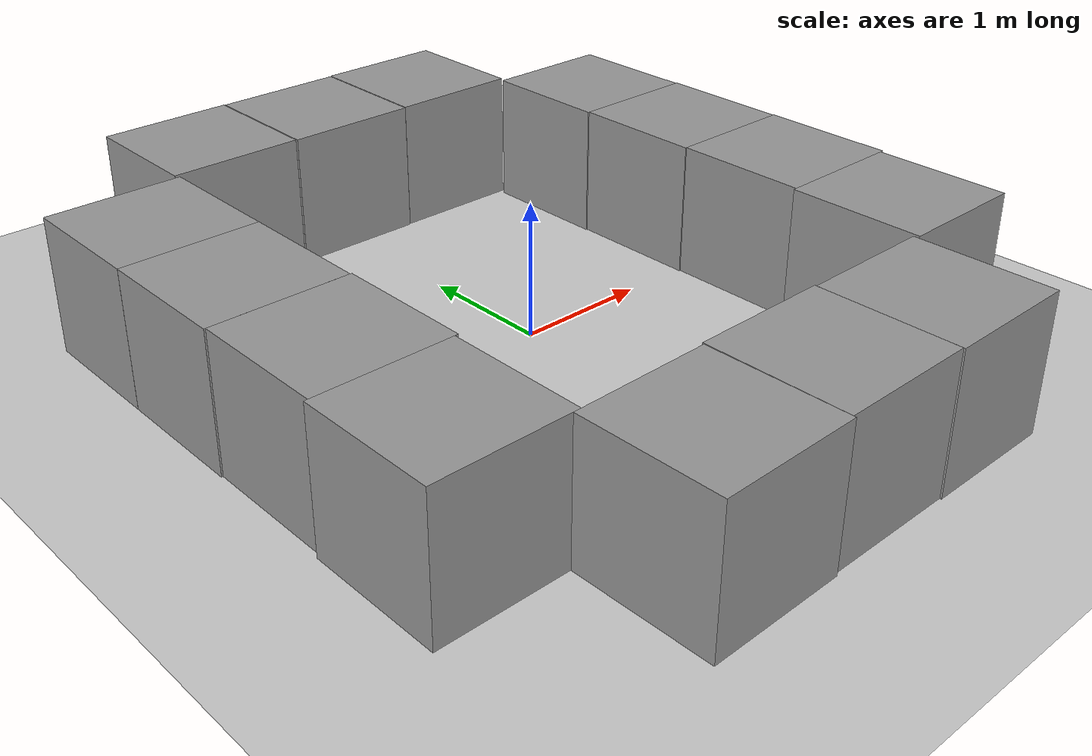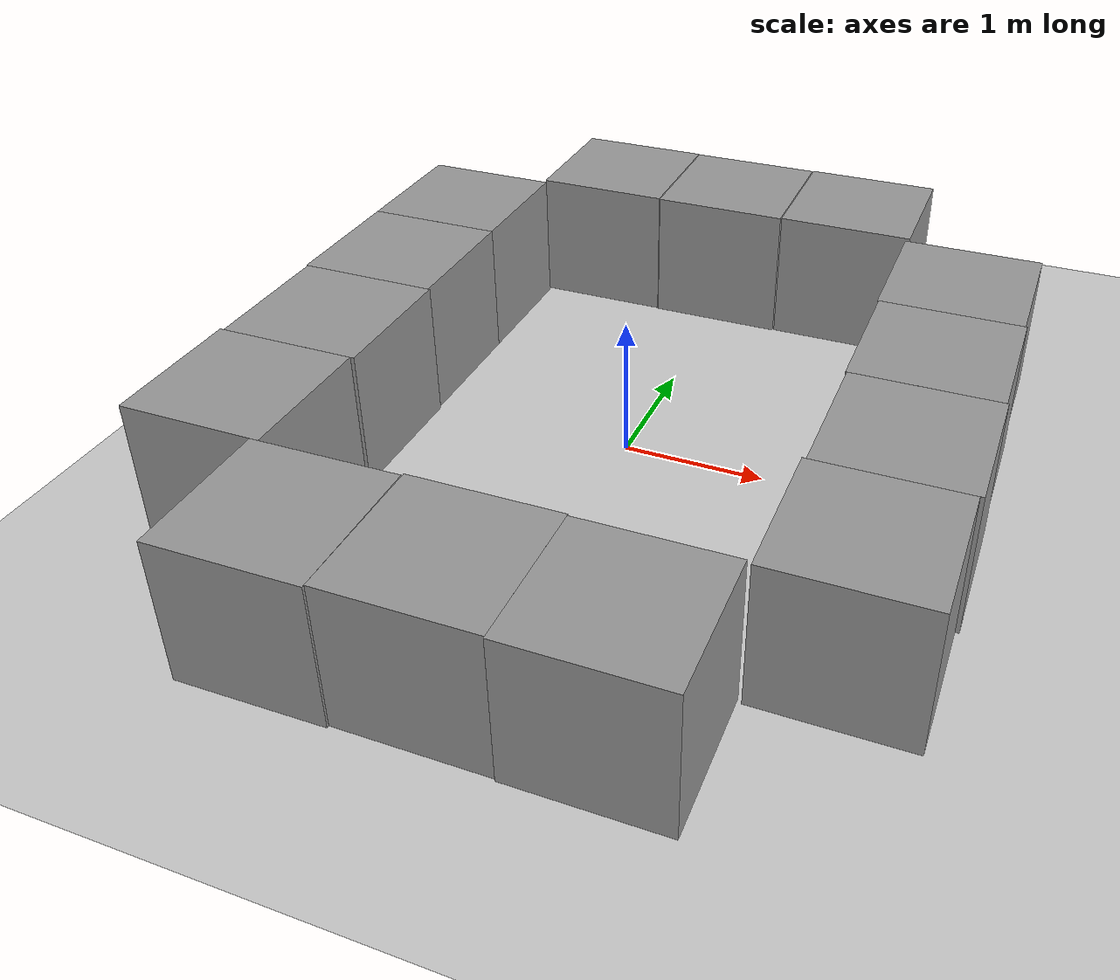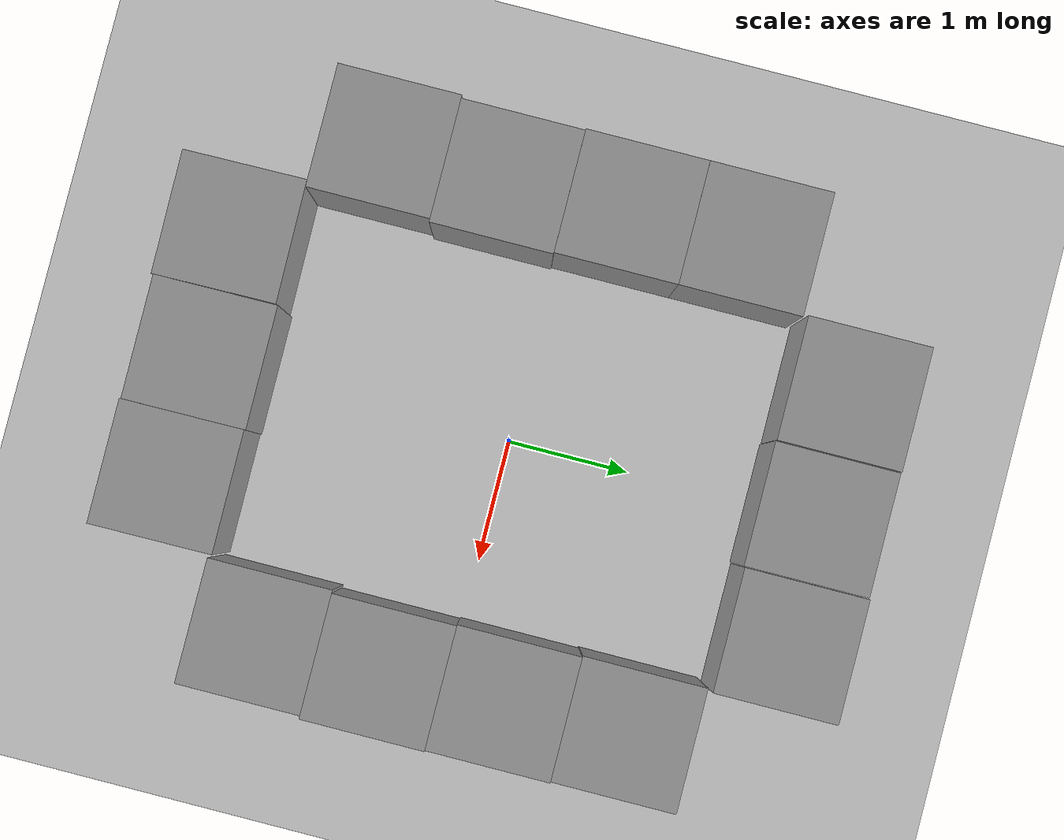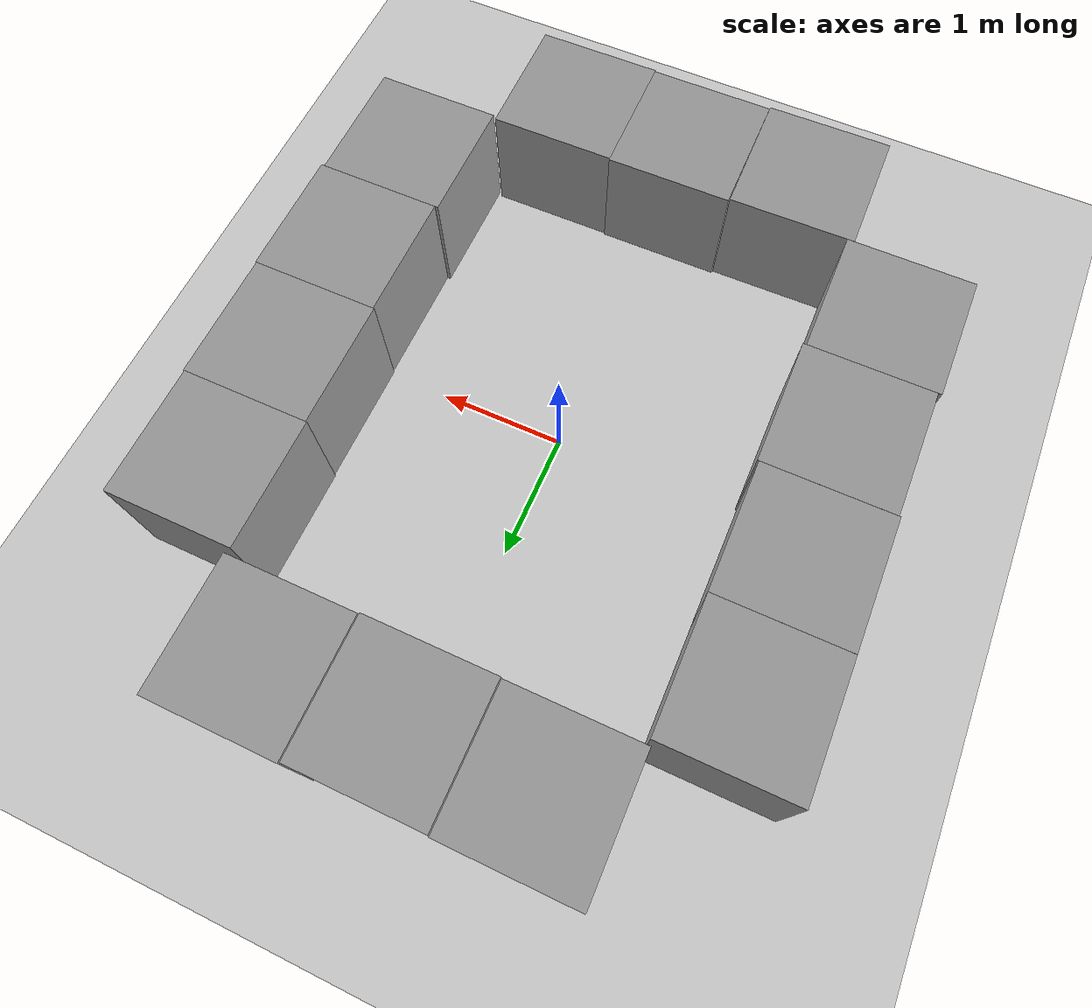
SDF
<sdf version="1.7">
 <world name="default">
  <light name="sun" type="directional">
   <pose>0 0 10 0 -0 0</pose>
   <diffuse>0.8 0.8 0.8 1</diffuse>
   <specular>0.2 0.2 0.2 1</specular>
   <attenuation>
    <range>1000</range>
    <constant>0.9</constant>
    <linear>0.01</linear>
    <quadratic>0.001</quadratic>
   </attenuation>
   <direction>-0.5 0.1 -0.9</direction>
   <spot><inner_angle>0</inner_angle><outer_angle>0</outer_angle><falloff>0</falloff></spot>
  </light>
  <model name="ground_plane">
   <static>1</static>
   <link name="link">
    <collision name="collision">
     <geometry><plane><normal>0 0 1</normal><size>100 100</size></plane></geometry>
     <surface>
      <contact><collide_bitmask>65535</collide_bitmask></contact>
      <friction><ode><mu>100</mu><mu2>50</mu2></ode></friction>
     </surface>
    </collision>
    <visual name="visual">
     <cast_shadows>0</cast_shadows>
     <geometry><plane><normal>0 0 1</normal><size>100 100</size></plane></geometry>
     <material>
      <script><uri>file://media/materials/scripts/gazebo.material</uri><name>Gazebo/Grey</name></script>
     </material>
    </visual>
   </link>
  </model>
  <physics type="ode">
   <real_time_update_rate>1000</real_time_update_rate>
   <max_step_size>0.001</max_step_size>
   <real_time_factor>1</real_time_factor>
   <ode>
    <solver>
     <type>quick</type>
     <iters>150</iters>
     <precon_iters>0</precon_iters>
     <sor>1.4</sor>
     <use_dynamic_moi_rescaling>1</use_dynamic_moi_rescaling>
    </solver>
    <constraints>
     <cfm>1e-05</cfm>
     <erp>0.2</erp>
     <contact_max_correcting_vel>2000</contact_max_correcting_vel>
     <contact_surface_layer>0.01</contact_surface_layer>
    </constraints>
   </ode>
  </physics>
  <scene><ambient>0.4 0.4 0.4 1</ambient><background>0.7 0.7 0.7 1</background><shadows>1</shadows></scene>
  <gravity>0 0 -9.8</gravity>
  <magnetic_field>6e-06 2.3e-05 -4.2e-05</magnetic_field>
  <atmosphere type="adiabatic"/>
  <spherical_coordinates>
   <surface_model>EARTH_WGS84</surface_model>
   <latitude_deg>0</latitude_deg>
   <longitude_deg>0</longitude_deg>
   <elevation>0</elevation>
   <heading_deg>0</heading_deg>
  </spherical_coordinates>
  <model name="unit_box">
   <pose>0.001662 2.50363 0.5 0 -0 0</pose>
   <link name="link">
    <inertial>
     <mass>1</mass>
     <inertia>
      <ixx>0.166667</ixx>
      <ixy>0</ixy>
      <ixz>0</ixz>
      <iyy>0.166667</iyy>
      <iyz>0</iyz>
      <izz>0.166667</izz>
     </inertia>
    </inertial>
    <collision name="collision"><geometry><box><size>1 1 1</size></box></geometry></collision>
    <visual name="visual">
     <geometry><box><size>1 1 1</size></box></geometry>
     <material>
      <script><name>Gazebo/Grey</name><uri>file://media/materials/scripts/gazebo.material</uri></script>
     </material>
    </visual>
   </link>
  </model>
  <model name="unit_box_0">
   <pose>1.00991 2.51354 0.5 0 -0 0</pose>
   <link name="link">
    <inertial>
     <mass>1</mass>
     <inertia>
      <ixx>0.166667</ixx>
      <ixy>0</ixy>
      <ixz>0</ixz>
      <iyy>0.166667</iyy>
      <iyz>0</iyz>
      <izz>0.166667</izz>
     </inertia>
    </inertial>
    <collision name="collision"><geometry><box><size>1 1 1</size></box></geometry></collision>
    <visual name="visual">
     <geometry><box><size>1 1 1</size></box></geometry>
     <material>
      <script><name>Gazebo/Grey</name><uri>file://media/materials/scripts/gazebo.material</uri></script>
     </material>
    </visual>
   </link>
  </model>
  <model name="unit_box_1">
   <pose>-1.00674 2.51136 0.5 0 -0 0</pose>
   <link name="link">
    <inertial>
     <mass>1</mass>
     <inertia>
      <ixx>0.166667</ixx>
      <ixy>0</ixy>
      <ixz>0</ixz>
      <iyy>0.166667</iyy>
      <iyz>0</iyz>
      <izz>0.166667</izz>
     </inertia>
    </inertial>
    <collision name="collision"><geometry><box><size>1 1 1</size></box></geometry></collision>
    <visual name="visual">
     <geometry><box><size>1 1 1</size></box></geometry>
     <material>
      <script><name>Gazebo/Grey</name><uri>file://media/materials/scripts/gazebo.material</uri></script>
     </material>
    </visual>
   </link>
  </model>
  <model name="unit_box_2">
   <pose>1.98467 1.47067 0.5 0 -0 0.000101</pose>
   <link name="link">
    <inertial>
     <mass>1</mass>
     <inertia>
      <ixx>0.166667</ixx>
      <ixy>0</ixy>
      <ixz>0</ixz>
      <iyy>0.166667</iyy>
      <iyz>0</iyz>
      <izz>0.166667</izz>
     </inertia>
    </inertial>
    <collision name="collision"><geometry><box><size>1 1 1</size></box></geometry></collision>
    <visual name="visual">
     <geometry><box><size>1 1 1</size></box></geometry>
     <material>
      <script><name>Gazebo/Grey</name><uri>file://media/materials/scripts/gazebo.material</uri></script>
     </material>
    </visual>
   </link>
  </model>
  <model name="unit_box_3">
   <pose>1.99446 0.470672 0.5 0 -0 0.0001</pose>
   <link name="link">
    <inertial>
     <mass>1</mass>
     <inertia>
      <ixx>0.166667</ixx>
      <ixy>0</ixy>
      <ixz>0</ixz>
      <iyy>0.166667</iyy>
      <iyz>0</iyz>
      <izz>0.166667</izz>
     </inertia>
    </inertial>
    <collision name="collision"><geometry><box><size>1 1 1</size></box></geometry></collision>
    <visual name="visual">
     <geometry><box><size>1 1 1</size></box></geometry>
     <material>
      <script><name>Gazebo/Grey</name><uri>file://media/materials/scripts/gazebo.material</uri></script>
     </material>
    </visual>
   </link>
  </model>
  <model name="unit_box_4">
   <pose>2.00346 -0.529335 0.5 0 -0 0.000109</pose>
   <link name="link">
    <inertial>
     <mass>1</mass>
     <inertia>
      <ixx>0.166667</ixx>
      <ixy>0</ixy>
      <ixz>0</ixz>
      <iyy>0.166667</iyy>
      <iyz>0</iyz>
      <izz>0.166667</izz>
     </inertia>
    </inertial>
    <collision name="collision"><geometry><box><size>1 1 1</size></box></geometry></collision>
    <visual name="visual">
     <geometry><box><size>1 1 1</size></box></geometry>
     <material>
      <script><name>Gazebo/Grey</name><uri>file://media/materials/scripts/gazebo.material</uri></script>
     </material>
    </visual>
   </link>
  </model>
  <model name="unit_box_5">
   <pose>1.97789 -1.52934 0.5 0 -0 0.000108</pose>
   <link name="link">
    <inertial>
     <mass>1</mass>
     <inertia>
      <ixx>0.166667</ixx>
      <ixy>0</ixy>
      <ixz>0</ixz>
      <iyy>0.166667</iyy>
      <iyz>0</iyz>
      <izz>0.166667</izz>
     </inertia>
    </inertial>
    <collision name="collision"><geometry><box><size>1 1 1</size></box></geometry></collision>
    <visual name="visual">
     <geometry><box><size>1 1 1</size></box></geometry>
     <material>
      <script><name>Gazebo/Grey</name><uri>file://media/materials/scripts/gazebo.material</uri></script>
     </material>
    </visual>
   </link>
  </model>
  <model name="unit_box_1_clone">
   <pose>0.951407 -2.50339 0.5 0 -0 0.004636</pose>
   <link name="link">
    <inertial>
     <mass>1</mass>
     <inertia>
      <ixx>0.166667</ixx>
      <ixy>0</ixy>
      <ixz>0</ixz>
      <iyy>0.166667</iyy>
      <iyz>0</iyz>
      <izz>0.166667</izz>
     </inertia>
    </inertial>
    <collision name="collision"><geometry><box><size>1 1 1</size></box></geometry></collision>
    <visual name="visual">
     <geometry><box><size>1 1 1</size></box></geometry>
     <material>
      <script><name>Gazebo/Grey</name><uri>file://media/materials/scripts/gazebo.material</uri></script>
     </material>
    </visual>
   </link>
  </model>
  <model name="unit_box_1_clone_clone">
   <pose>-0.048663 -2.49593 0.5 0 -0 0.004611</pose>
   <link name="link">
    <inertial>
     <mass>1</mass>
     <inertia>
      <ixx>0.166667</ixx>
      <ixy>0</ixy>
      <ixz>0</ixz>
      <iyy>0.166667</iyy>
      <iyz>0</iyz>
      <izz>0.166667</izz>
     </inertia>
    </inertial>
    <collision name="collision"><geometry><box><size>1 1 1</size></box></geometry></collision>
    <visual name="visual">
     <geometry><box><size>1 1 1</size></box></geometry>
     <material>
      <script><name>Gazebo/Grey</name><uri>file://media/materials/scripts/gazebo.material</uri></script>
     </material>
    </visual>
   </link>
  </model>
  <model name="unit_box_1_clone_clone_0">
   <pose>-1.05203 -2.52112 0.5 0 -0 0.011724</pose>
   <link name="link">
    <inertial>
     <mass>1</mass>
     <inertia>
      <ixx>0.166667</ixx>
      <ixy>0</ixy>
      <ixz>0</ixz>
      <iyy>0.166667</iyy>
      <iyz>0</iyz>
      <izz>0.166667</izz>
     </inertia>
    </inertial>
    <collision name="collision"><geometry><box><size>1 1 1</size></box></geometry></collision>
    <visual name="visual">
     <geometry><box><size>1 1 1</size></box></geometry>
     <material>
      <script><name>Gazebo/Grey</name><uri>file://media/materials/scripts/gazebo.material</uri></script>
     </material>
    </visual>
   </link>
  </model>
  <model name="unit_box_1_clone_clone_1">
   <pose>-1.98661 1.47397 0.5 -0 -0 -0.000104</pose>
   <link name="link">
    <inertial>
     <mass>1</mass>
     <inertia>
      <ixx>0.166667</ixx>
      <ixy>0</ixy>
      <ixz>0</ixz>
      <iyy>0.166667</iyy>
      <iyz>0</iyz>
      <izz>0.166667</izz>
     </inertia>
    </inertial>
    <collision name="collision"><geometry><box><size>1 1 1</size></box></geometry></collision>
    <visual name="visual">
     <geometry><box><size>1 1 1</size></box></geometry>
     <material>
      <script><name>Gazebo/Grey</name><uri>file://media/materials/scripts/gazebo.material</uri></script>
     </material>
    </visual>
   </link>
  </model>
  <model name="unit_box_1_clone_clone_2">
   <pose>-1.9862 0.473914 0.5 0 -0 1.1e-05</pose>
   <link name="link">
    <inertial>
     <mass>1</mass>
     <inertia>
      <ixx>0.166667</ixx>
      <ixy>0</ixy>
      <ixz>0</ixz>
      <iyy>0.166667</iyy>
      <iyz>0</iyz>
      <izz>0.166667</izz>
     </inertia>
    </inertial>
    <collision name="collision"><geometry><box><size>1 1 1</size></box></geometry></collision>
    <visual name="visual">
     <geometry><box><size>1 1 1</size></box></geometry>
     <material>
      <script><name>Gazebo/Grey</name><uri>file://media/materials/scripts/gazebo.material</uri></script>
     </material>
    </visual>
   </link>
  </model>
  <model name="unit_box_6">
   <pose>-1.97438 -0.526217 0.5 0 -0 3.7e-05</pose>
   <link name="link">
    <inertial>
     <mass>1</mass>
     <inertia>
      <ixx>0.166667</ixx>
      <ixy>0</ixy>
      <ixz>0</ixz>
      <iyy>0.166667</iyy>
      <iyz>0</iyz>
      <izz>0.166667</izz>
     </inertia>
    </inertial>
    <collision name="collision"><geometry><box><size>1 1 1</size></box></geometry></collision>
    <visual name="visual">
     <geometry><box><size>1 1 1</size></box></geometry>
     <material>
      <script><name>Gazebo/Grey</name><uri>file://media/materials/scripts/gazebo.material</uri></script>
     </material>
    </visual>
   </link>
  </model>
  <model name="unit_box_1_clone_clone_3">
   <pose>-2.00083 -1.52624 0.5 0 -0 6.6e-05</pose>
   <link name="link">
    <inertial>
     <mass>1</mass>
     <inertia>
      <ixx>0.166667</ixx>
      <ixy>0</ixy>
      <ixz>0</ixz>
      <iyy>0.166667</iyy>
      <iyz>0</iyz>
      <izz>0.166667</izz>
     </inertia>
    </inertial>
    <collision name="collision"><geometry><box><size>1 1 1</size></box></geometry></collision>
    <visual name="visual">
     <geometry><box><size>1 1 1</size></box></geometry>
     <material>
      <script><name>Gazebo/Grey</name><uri>file://media/materials/scripts/gazebo.material</uri></script>
     </material>
    </visual>
   </link>
  </model>
 </world>
</sdf>
